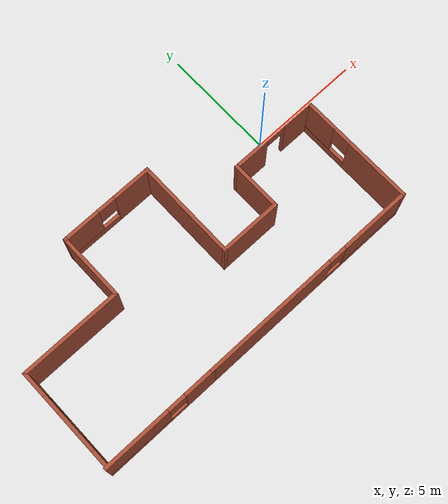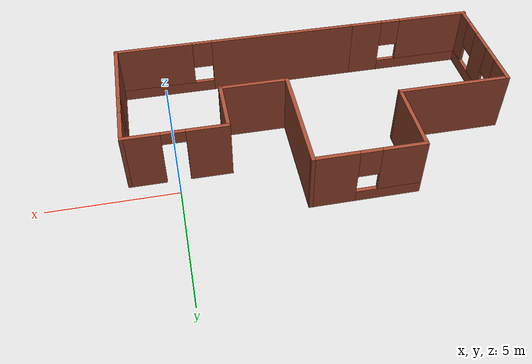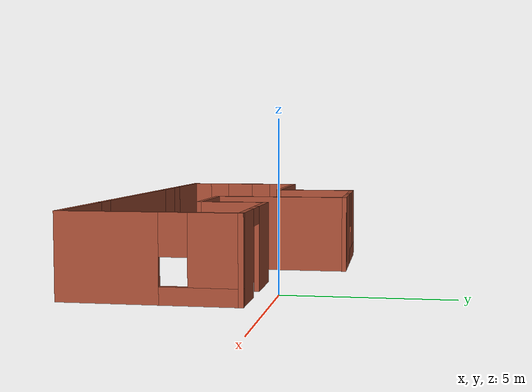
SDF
<?xml version='1.0'?>
<sdf version='1.7'>
  <model name='rool'>
    <pose>-5.62702 -2.14079 0 0 -0 0</pose>
    <link name='Wall_10'>
      <pose>-1.025 3.675 0 0 -0 3.14159</pose>
      <visual name='Wall_10_Visual_0'>
        <pose>-1.24579 0 1.25 0 -0 0</pose>
        <geometry>
          <box>
            <size>1.75842 0.15 2.5</size>
          </box>
        </geometry>
        <material>
          <script>
            <uri>file://media/materials/scripts/gazebo.material</uri>
            <name>Gazebo/Bricks</name>
          </script>
          <ambient>1 1 1 1</ambient>
        </material>
        <meta>
          <layer>0</layer>
        </meta>
      </visual>
      <collision name='Wall_10_Collision_0'>
        <geometry>
          <box>
            <size>1.75842 0.15 2.5</size>
          </box>
        </geometry>
        <pose>-1.24579 0 1.25 0 -0 0</pose>
      </collision>
      <visual name='Wall_10_Visual_1'>
        <pose>0.879211 0 0.25 0 -0 0</pose>
        <geometry>
          <box>
            <size>2.49158 0.15 0.5</size>
          </box>
        </geometry>
        <material>
          <script>
            <uri>file://media/materials/scripts/gazebo.material</uri>
            <name>Gazebo/Bricks</name>
          </script>
          <ambient>1 1 1 1</ambient>
        </material>
        <meta>
          <layer>0</layer>
        </meta>
      </visual>
      <collision name='Wall_10_Collision_1'>
        <geometry>
          <box>
            <size>2.49158 0.15 0.5</size>
          </box>
        </geometry>
        <pose>0.879211 0 0.25 0 -0 0</pose>
      </collision>
      <visual name='Wall_10_Visual_2'>
        <pose>1.27921 0 1.5 0 -0 0</pose>
        <geometry>
          <box>
            <size>1.69158 0.15 2</size>
          </box>
        </geometry>
        <material>
          <script>
            <uri>file://media/materials/scripts/gazebo.material</uri>
            <name>Gazebo/Bricks</name>
          </script>
          <ambient>1 1 1 1</ambient>
        </material>
        <meta>
          <layer>0</layer>
        </meta>
      </visual>
      <collision name='Wall_10_Collision_2'>
        <geometry>
          <box>
            <size>1.69158 0.15 2</size>
          </box>
        </geometry>
        <pose>1.27921 0 1.5 0 -0 0</pose>
      </collision>
      <visual name='Wall_10_Visual_3'>
        <pose>0.033422 0 1.9 0 -0 0</pose>
        <geometry>
          <box>
            <size>0.8 0.15 1.2</size>
          </box>
        </geometry>
        <material>
          <script>
            <uri>file://media/materials/scripts/gazebo.material</uri>
            <name>Gazebo/Bricks</name>
          </script>
          <ambient>1 1 1 1</ambient>
        </material>
        <meta>
          <layer>0</layer>
        </meta>
      </visual>
      <collision name='Wall_10_Collision_3'>
        <geometry>
          <box>
            <size>0.8 0.15 1.2</size>
          </box>
        </geometry>
        <pose>0.033422 0 1.9 0 -0 0</pose>
      </collision>
    </link>
    <link name='Wall_11'>
      <collision name='Wall_11_Collision'>
        <geometry>
          <box>
            <size>3 0.15 2.5</size>
          </box>
        </geometry>
        <pose>0 0 1.25 0 -0 0</pose>
      </collision>
      <visual name='Wall_11_Visual'>
        <pose>0 0 1.25 0 -0 0</pose>
        <geometry>
          <box>
            <size>3 0.15 2.5</size>
          </box>
        </geometry>
        <material>
          <script>
            <uri>file://media/materials/scripts/gazebo.material</uri>
            <name>Gazebo/Bricks</name>
          </script>
          <ambient>1 1 1 1</ambient>
        </material>
        <meta>
          <layer>0</layer>
        </meta>
      </visual>
      <pose>-3.075 2.25 0 0 -0 -1.5708</pose>
    </link>
    <link name='Wall_12'>
      <collision name='Wall_12_Collision'>
        <geometry>
          <box>
            <size>4.5 0.15 2.5</size>
          </box>
        </geometry>
        <pose>0 0 1.25 0 -0 0</pose>
      </collision>
      <visual name='Wall_12_Visual'>
        <pose>0 0 1.25 0 -0 0</pose>
        <geometry>
          <box>
            <size>4.5 0.15 2.5</size>
          </box>
        </geometry>
        <material>
          <script>
            <uri>file://media/materials/scripts/gazebo.material</uri>
            <name>Gazebo/Bricks</name>
          </script>
          <ambient>1 1 1 1</ambient>
        </material>
        <meta>
          <layer>0</layer>
        </meta>
      </visual>
      <pose>-5.25 0.825 0 0 -0 3.14159</pose>
    </link>
    <link name='Wall_13'>
      <pose>-7.425 -1.35 0 0 -0 -1.5708</pose>
      <visual name='Wall_13_Visual_0'>
        <pose>-1.67462 0 1.25 0 -0 0</pose>
        <geometry>
          <box>
            <size>1.15076 0.15 2.5</size>
          </box>
        </geometry>
        <material>
          <script>
            <uri>file://media/materials/scripts/gazebo.material</uri>
            <name>Gazebo/Bricks</name>
          </script>
          <ambient>1 1 1 1</ambient>
        </material>
        <meta>
          <layer>0</layer>
        </meta>
      </visual>
      <collision name='Wall_13_Collision_0'>
        <geometry>
          <box>
            <size>1.15076 0.15 2.5</size>
          </box>
        </geometry>
        <pose>-1.67462 0 1.25 0 -0 0</pose>
      </collision>
      <visual name='Wall_13_Visual_1'>
        <pose>0.575381 0 0.25 0 -0 0</pose>
        <geometry>
          <box>
            <size>3.34924 0.15 0.5</size>
          </box>
        </geometry>
        <material>
          <script>
            <uri>file://media/materials/scripts/gazebo.material</uri>
            <name>Gazebo/Bricks</name>
          </script>
          <ambient>1 1 1 1</ambient>
        </material>
        <meta>
          <layer>0</layer>
        </meta>
      </visual>
      <collision name='Wall_13_Collision_1'>
        <geometry>
          <box>
            <size>3.34924 0.15 0.5</size>
          </box>
        </geometry>
        <pose>0.575381 0 0.25 0 -0 0</pose>
      </collision>
      <visual name='Wall_13_Visual_2'>
        <pose>0.23476 0 1.5 0 -0 0</pose>
        <geometry>
          <box>
            <size>1.068 0.15 2</size>
          </box>
        </geometry>
        <material>
          <script>
            <uri>file://media/materials/scripts/gazebo.material</uri>
            <name>Gazebo/Bricks</name>
          </script>
          <ambient>1 1 1 1</ambient>
        </material>
        <meta>
          <layer>0</layer>
        </meta>
      </visual>
      <collision name='Wall_13_Collision_2'>
        <geometry>
          <box>
            <size>1.068 0.15 2</size>
          </box>
        </geometry>
        <pose>0.23476 0 1.5 0 -0 0</pose>
      </collision>
      <visual name='Wall_13_Visual_3'>
        <pose>1.90938 0 1.5 0 -0 0</pose>
        <geometry>
          <box>
            <size>0.681242 0.15 2</size>
          </box>
        </geometry>
        <material>
          <script>
            <uri>file://media/materials/scripts/gazebo.material</uri>
            <name>Gazebo/Bricks</name>
          </script>
          <ambient>1 1 1 1</ambient>
        </material>
        <meta>
          <layer>0</layer>
        </meta>
      </visual>
      <collision name='Wall_13_Collision_3'>
        <geometry>
          <box>
            <size>0.681242 0.15 2</size>
          </box>
        </geometry>
        <pose>1.90938 0 1.5 0 -0 0</pose>
      </collision>
      <visual name='Wall_13_Visual_4'>
        <pose>-0.699239 0 1.9 0 -0 0</pose>
        <geometry>
          <box>
            <size>0.8 0.15 1.2</size>
          </box>
        </geometry>
        <material>
          <script>
            <uri>file://media/materials/scripts/gazebo.material</uri>
            <name>Gazebo/Bricks</name>
          </script>
          <ambient>1 1 1 1</ambient>
        </material>
        <meta>
          <layer>0</layer>
        </meta>
      </visual>
      <collision name='Wall_13_Collision_4'>
        <geometry>
          <box>
            <size>0.8 0.15 1.2</size>
          </box>
        </geometry>
        <pose>-0.699239 0 1.9 0 -0 0</pose>
      </collision>
      <visual name='Wall_13_Visual_5'>
        <pose>1.16876 0 1.9 0 -0 0</pose>
        <geometry>
          <box>
            <size>0.8 0.15 1.2</size>
          </box>
        </geometry>
        <material>
          <script>
            <uri>file://media/materials/scripts/gazebo.material</uri>
            <name>Gazebo/Bricks</name>
          </script>
          <ambient>1 1 1 1</ambient>
        </material>
        <meta>
          <layer>0</layer>
        </meta>
      </visual>
      <collision name='Wall_13_Collision_5'>
        <geometry>
          <box>
            <size>0.8 0.15 1.2</size>
          </box>
        </geometry>
        <pose>1.16876 0 1.9 0 -0 0</pose>
      </collision>
    </link>
    <link name='Wall_16'>
      <pose>-4.925 -3.675 0 0 -0 3.14159</pose>
      <visual name='Wall_16_Visual_0'>
        <pose>-1.91207 0 1.25 0 -0 0</pose>
        <geometry>
          <box>
            <size>1.42587 0.15 2.5</size>
          </box>
        </geometry>
        <material>
          <script>
            <uri>file://media/materials/scripts/gazebo.material</uri>
            <name>Gazebo/Bricks</name>
          </script>
          <ambient>1 1 1 1</ambient>
        </material>
        <meta>
          <layer>0</layer>
        </meta>
      </visual>
      <collision name='Wall_16_Collision_0'>
        <geometry>
          <box>
            <size>1.42587 0.15 2.5</size>
          </box>
        </geometry>
        <pose>-1.91207 0 1.25 0 -0 0</pose>
      </collision>
      <visual name='Wall_16_Visual_1'>
        <pose>0.712934 0 0.25 0 -0 0</pose>
        <geometry>
          <box>
            <size>3.82413 0.15 0.5</size>
          </box>
        </geometry>
        <material>
          <script>
            <uri>file://media/materials/scripts/gazebo.material</uri>
            <name>Gazebo/Bricks</name>
          </script>
          <ambient>1 1 1 1</ambient>
        </material>
        <meta>
          <layer>0</layer>
        </meta>
      </visual>
      <collision name='Wall_16_Collision_1'>
        <geometry>
          <box>
            <size>3.82413 0.15 0.5</size>
          </box>
        </geometry>
        <pose>0.712934 0 0.25 0 -0 0</pose>
      </collision>
      <visual name='Wall_16_Visual_2'>
        <pose>1.11293 0 1.5 0 -0 0</pose>
        <geometry>
          <box>
            <size>3.02413 0.15 2</size>
          </box>
        </geometry>
        <material>
          <script>
            <uri>file://media/materials/scripts/gazebo.material</uri>
            <name>Gazebo/Bricks</name>
          </script>
          <ambient>1 1 1 1</ambient>
        </material>
        <meta>
          <layer>0</layer>
        </meta>
      </visual>
      <collision name='Wall_16_Collision_2'>
        <geometry>
          <box>
            <size>3.02413 0.15 2</size>
          </box>
        </geometry>
        <pose>1.11293 0 1.5 0 -0 0</pose>
      </collision>
      <visual name='Wall_16_Visual_3'>
        <pose>-0.799132 0 1.9 0 -0 0</pose>
        <geometry>
          <box>
            <size>0.8 0.15 1.2</size>
          </box>
        </geometry>
        <material>
          <script>
            <uri>file://media/materials/scripts/gazebo.material</uri>
            <name>Gazebo/Bricks</name>
          </script>
          <ambient>1 1 1 1</ambient>
        </material>
        <meta>
          <layer>0</layer>
        </meta>
      </visual>
      <collision name='Wall_16_Collision_3'>
        <geometry>
          <box>
            <size>0.8 0.15 1.2</size>
          </box>
        </geometry>
        <pose>-0.799132 0 1.9 0 -0 0</pose>
      </collision>
    </link>
    <link name='Wall_3'>
      <pose>2.55 -3.675 0 0 -0 0</pose>
      <visual name='Wall_3_Visual_0'>
        <pose>-1.98733 0 1.25 0 -0 0</pose>
        <geometry>
          <box>
            <size>6.02534 0.15 2.5</size>
          </box>
        </geometry>
        <material>
          <script>
            <uri>file://media/materials/scripts/gazebo.material</uri>
            <name>Gazebo/Bricks</name>
          </script>
          <ambient>1 1 1 1</ambient>
        </material>
        <meta>
          <layer>0</layer>
        </meta>
      </visual>
      <collision name='Wall_3_Collision_0'>
        <geometry>
          <box>
            <size>6.02534 0.15 2.5</size>
          </box>
        </geometry>
        <pose>-1.98733 0 1.25 0 -0 0</pose>
      </collision>
      <visual name='Wall_3_Visual_1'>
        <pose>3.01267 0 0.25 0 -0 0</pose>
        <geometry>
          <box>
            <size>3.97466 0.15 0.5</size>
          </box>
        </geometry>
        <material>
          <script>
            <uri>file://media/materials/scripts/gazebo.material</uri>
            <name>Gazebo/Bricks</name>
          </script>
          <ambient>1 1 1 1</ambient>
        </material>
        <meta>
          <layer>0</layer>
        </meta>
      </visual>
      <collision name='Wall_3_Collision_1'>
        <geometry>
          <box>
            <size>3.97466 0.15 0.5</size>
          </box>
        </geometry>
        <pose>3.01267 0 0.25 0 -0 0</pose>
      </collision>
      <visual name='Wall_3_Visual_2'>
        <pose>3.41267 0 1.5 0 -0 0</pose>
        <geometry>
          <box>
            <size>3.17466 0.15 2</size>
          </box>
        </geometry>
        <material>
          <script>
            <uri>file://media/materials/scripts/gazebo.material</uri>
            <name>Gazebo/Bricks</name>
          </script>
          <ambient>1 1 1 1</ambient>
        </material>
        <meta>
          <layer>0</layer>
        </meta>
      </visual>
      <collision name='Wall_3_Collision_2'>
        <geometry>
          <box>
            <size>3.17466 0.15 2</size>
          </box>
        </geometry>
        <pose>3.41267 0 1.5 0 -0 0</pose>
      </collision>
      <visual name='Wall_3_Visual_3'>
        <pose>1.42534 0 1.9 0 -0 0</pose>
        <geometry>
          <box>
            <size>0.8 0.15 1.2</size>
          </box>
        </geometry>
        <material>
          <script>
            <uri>file://media/materials/scripts/gazebo.material</uri>
            <name>Gazebo/Bricks</name>
          </script>
          <ambient>1 1 1 1</ambient>
        </material>
        <meta>
          <layer>0</layer>
        </meta>
      </visual>
      <collision name='Wall_3_Collision_3'>
        <geometry>
          <box>
            <size>0.8 0.15 1.2</size>
          </box>
        </geometry>
        <pose>1.42534 0 1.9 0 -0 0</pose>
      </collision>
    </link>
    <link name='Wall_5'>
      <pose>7.475 -1.125 0 0 -0 1.5708</pose>
      <visual name='Wall_5_Visual_0'>
        <pose>-1.1574 0 1.25 0 -0 0</pose>
        <geometry>
          <box>
            <size>2.9352 0.15 2.5</size>
          </box>
        </geometry>
        <material>
          <script>
            <uri>file://media/materials/scripts/gazebo.material</uri>
            <name>Gazebo/Bricks</name>
          </script>
          <ambient>1 1 1 1</ambient>
        </material>
        <meta>
          <layer>0</layer>
        </meta>
      </visual>
      <collision name='Wall_5_Collision_0'>
        <geometry>
          <box>
            <size>2.9352 0.15 2.5</size>
          </box>
        </geometry>
        <pose>-1.1574 0 1.25 0 -0 0</pose>
      </collision>
      <visual name='Wall_5_Visual_1'>
        <pose>1.4676 0 0.25 0 -0 0</pose>
        <geometry>
          <box>
            <size>2.3148 0.15 0.5</size>
          </box>
        </geometry>
        <material>
          <script>
            <uri>file://media/materials/scripts/gazebo.material</uri>
            <name>Gazebo/Bricks</name>
          </script>
          <ambient>1 1 1 1</ambient>
        </material>
        <meta>
          <layer>0</layer>
        </meta>
      </visual>
      <collision name='Wall_5_Collision_1'>
        <geometry>
          <box>
            <size>2.3148 0.15 0.5</size>
          </box>
        </geometry>
        <pose>1.4676 0 0.25 0 -0 0</pose>
      </collision>
      <visual name='Wall_5_Visual_2'>
        <pose>1.8676 0 1.5 0 -0 0</pose>
        <geometry>
          <box>
            <size>1.5148 0.15 2</size>
          </box>
        </geometry>
        <material>
          <script>
            <uri>file://media/materials/scripts/gazebo.material</uri>
            <name>Gazebo/Bricks</name>
          </script>
          <ambient>1 1 1 1</ambient>
        </material>
        <meta>
          <layer>0</layer>
        </meta>
      </visual>
      <collision name='Wall_5_Collision_2'>
        <geometry>
          <box>
            <size>1.5148 0.15 2</size>
          </box>
        </geometry>
        <pose>1.8676 0 1.5 0 -0 0</pose>
      </collision>
      <visual name='Wall_5_Visual_3'>
        <pose>0.710196 0 1.9 0 -0 0</pose>
        <geometry>
          <box>
            <size>0.8 0.15 1.2</size>
          </box>
        </geometry>
        <material>
          <script>
            <uri>file://media/materials/scripts/gazebo.material</uri>
            <name>Gazebo/Bricks</name>
          </script>
          <ambient>1 1 1 1</ambient>
        </material>
        <meta>
          <layer>0</layer>
        </meta>
      </visual>
      <collision name='Wall_5_Collision_3'>
        <geometry>
          <box>
            <size>0.8 0.15 1.2</size>
          </box>
        </geometry>
        <pose>0.710196 0 1.9 0 -0 0</pose>
      </collision>
    </link>
    <link name='Wall_6'>
      <pose>5.55 1.425 0 0 -0 3.14159</pose>
      <visual name='Wall_6_Visual_0'>
        <pose>-1.26352 0 1.25 0 -0 0</pose>
        <geometry>
          <box>
            <size>1.47296 0.15 2.5</size>
          </box>
        </geometry>
        <material>
          <script>
            <uri>file://media/materials/scripts/gazebo.material</uri>
            <name>Gazebo/Bricks</name>
          </script>
          <ambient>1 1 1 1</ambient>
        </material>
        <meta>
          <layer>0</layer>
        </meta>
      </visual>
      <collision name='Wall_6_Collision_0'>
        <geometry>
          <box>
            <size>1.47296 0.15 2.5</size>
          </box>
        </geometry>
        <pose>-1.26352 0 1.25 0 -0 0</pose>
      </collision>
      <visual name='Wall_6_Visual_1'>
        <pose>1.18648 0 1.25 0 -0 0</pose>
        <geometry>
          <box>
            <size>1.62704 0.15 2.5</size>
          </box>
        </geometry>
        <material>
          <script>
            <uri>file://media/materials/scripts/gazebo.material</uri>
            <name>Gazebo/Bricks</name>
          </script>
          <ambient>1 1 1 1</ambient>
        </material>
        <meta>
          <layer>0</layer>
        </meta>
      </visual>
      <collision name='Wall_6_Collision_1'>
        <geometry>
          <box>
            <size>1.62704 0.15 2.5</size>
          </box>
        </geometry>
        <pose>1.18648 0 1.25 0 -0 0</pose>
      </collision>
      <visual name='Wall_6_Visual_2'>
        <pose>-0.077039 0 2.25 0 -0 0</pose>
        <geometry>
          <box>
            <size>0.9 0.15 0.5</size>
          </box>
        </geometry>
        <material>
          <script>
            <uri>file://media/materials/scripts/gazebo.material</uri>
            <name>Gazebo/Bricks</name>
          </script>
          <ambient>1 1 1 1</ambient>
        </material>
        <meta>
          <layer>0</layer>
        </meta>
      </visual>
      <collision name='Wall_6_Collision_2'>
        <geometry>
          <box>
            <size>0.9 0.15 0.5</size>
          </box>
        </geometry>
        <pose>-0.077039 0 2.25 0 -0 0</pose>
      </collision>
    </link>
    <link name='Wall_7'>
      <collision name='Wall_7_Collision'>
        <geometry>
          <box>
            <size>2.25 0.15 2.5</size>
          </box>
        </geometry>
        <pose>0 0 1.25 0 -0 0</pose>
      </collision>
      <visual name='Wall_7_Visual'>
        <pose>0 0 1.25 0 -0 0</pose>
        <geometry>
          <box>
            <size>2.25 0.15 2.5</size>
          </box>
        </geometry>
        <material>
          <script>
            <uri>file://media/materials/scripts/gazebo.material</uri>
            <name>Gazebo/Bricks</name>
          </script>
          <ambient>1 1 1 1</ambient>
        </material>
        <meta>
          <layer>0</layer>
        </meta>
      </visual>
      <pose>3.625 0.375 0 0 -0 -1.5708</pose>
    </link>
    <link name='Wall_8'>
      <collision name='Wall_8_Collision'>
        <geometry>
          <box>
            <size>2.75 0.15 2.5</size>
          </box>
        </geometry>
        <pose>0 0 1.25 0 -0 0</pose>
      </collision>
      <visual name='Wall_8_Visual'>
        <pose>0 0 1.25 0 -0 0</pose>
        <geometry>
          <box>
            <size>2.75 0.15 2.5</size>
          </box>
        </geometry>
        <material>
          <script>
            <uri>file://media/materials/scripts/gazebo.material</uri>
            <name>Gazebo/Bricks</name>
          </script>
          <ambient>1 1 1 1</ambient>
        </material>
        <meta>
          <layer>0</layer>
        </meta>
      </visual>
      <pose>2.325 -0.675 0 0 -0 3.14159</pose>
    </link>
    <link name='Wall_9'>
      <collision name='Wall_9_Collision'>
        <geometry>
          <box>
            <size>4.5 0.15 2.5</size>
          </box>
        </geometry>
        <pose>0 0 1.25 0 -0 0</pose>
      </collision>
      <visual name='Wall_9_Visual'>
        <pose>0 0 1.25 0 -0 0</pose>
        <geometry>
          <box>
            <size>4.5 0.15 2.5</size>
          </box>
        </geometry>
        <material>
          <script>
            <uri>file://media/materials/scripts/gazebo.material</uri>
            <name>Gazebo/Bricks</name>
          </script>
          <ambient>1 1 1 1</ambient>
        </material>
        <meta>
          <layer>0</layer>
        </meta>
      </visual>
      <pose>1.025 1.5 0 0 -0 1.5708</pose>
    </link>
    <static>1</static>
  </model>
</sdf>
